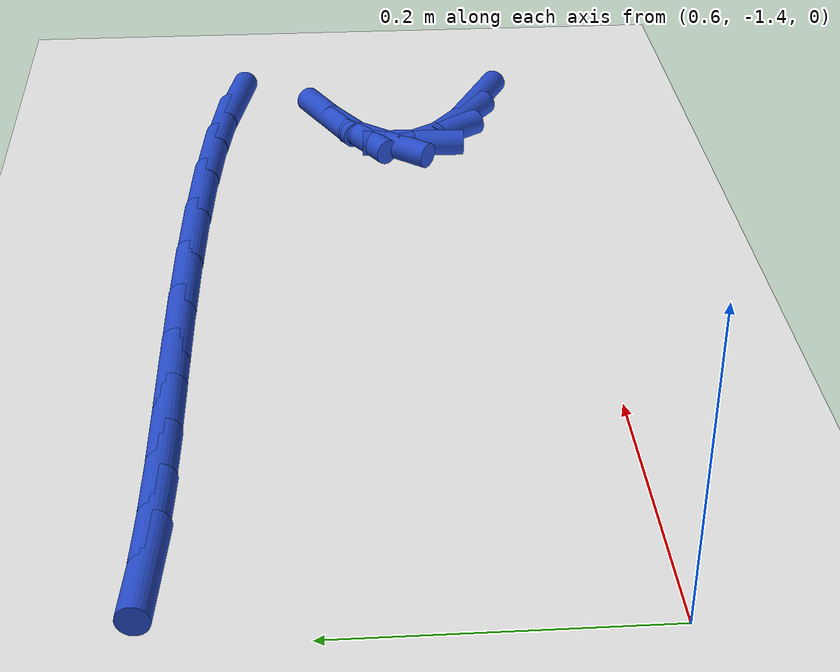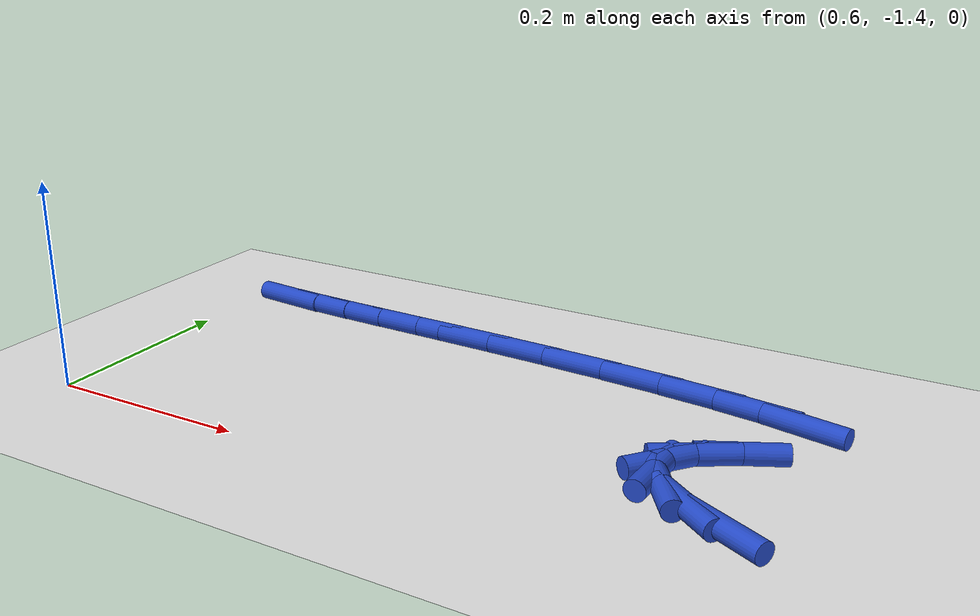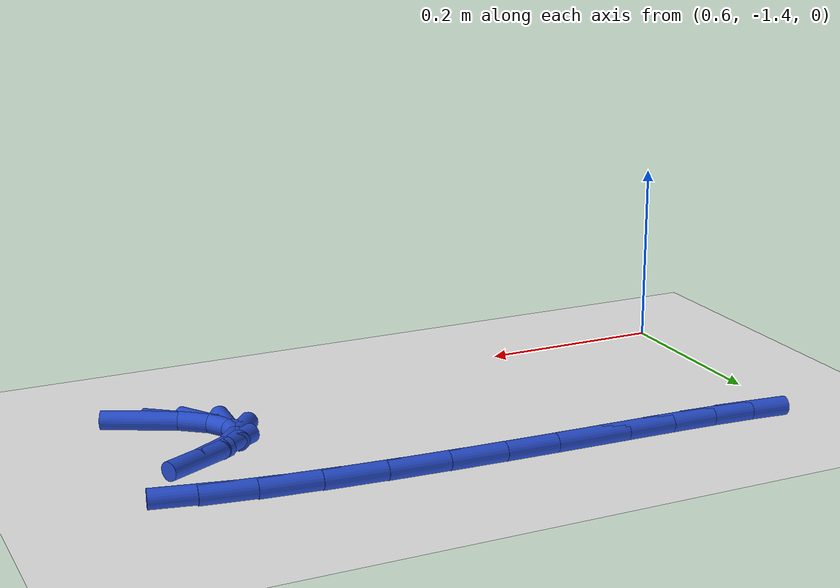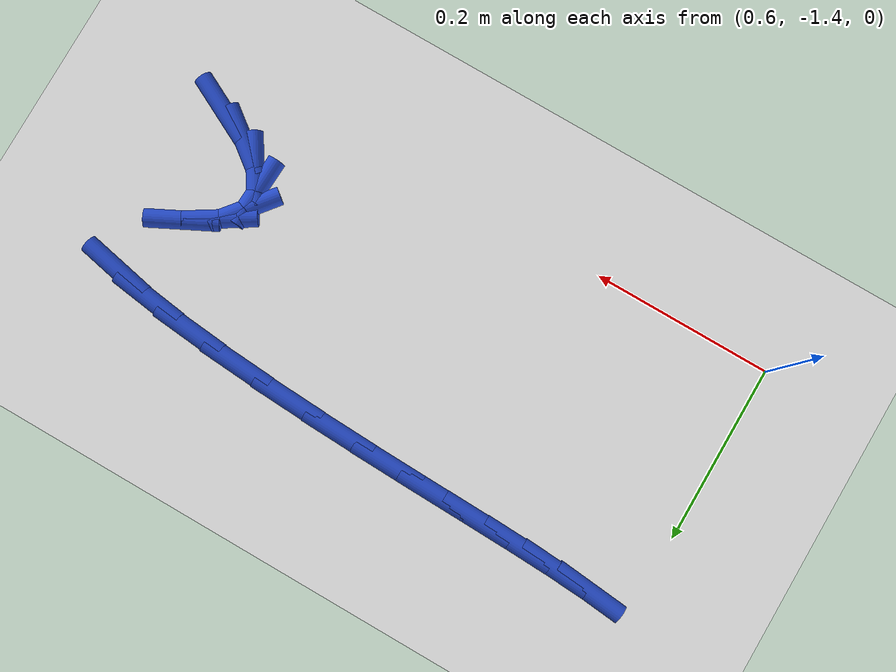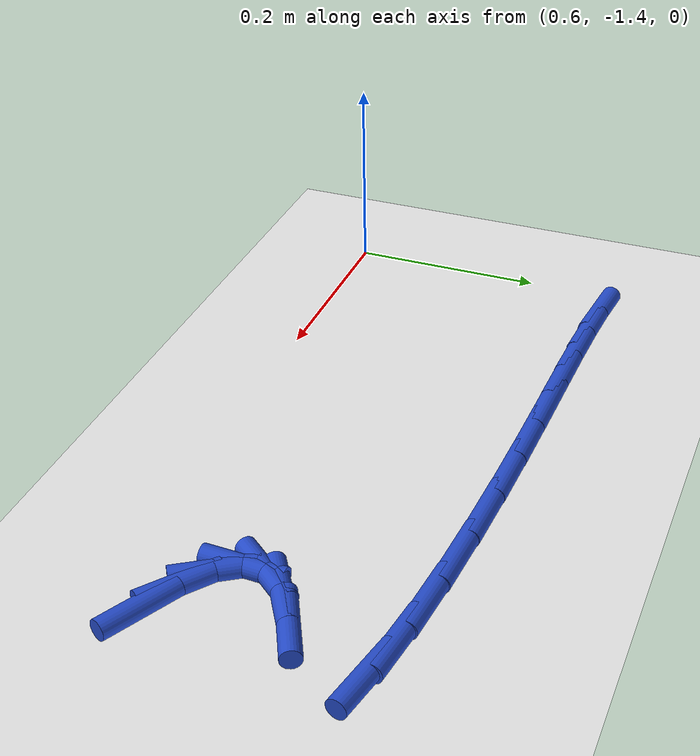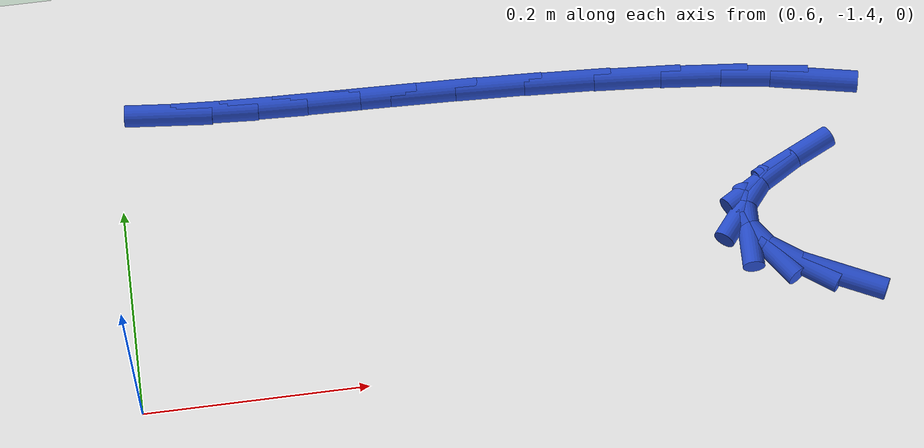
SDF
<sdf version="1.6">
 <world name="default">
  <model name="ground_plane">
   <static>1</static>
   <link name="link">
    <collision name="collision">
     <geometry><plane><normal>0 0 1</normal><size>100 100</size></plane></geometry>
     <surface><friction><ode><mu>100</mu><mu2>50</mu2></ode></friction></surface>
    </collision>
    <visual name="visual">
     <cast_shadows>0</cast_shadows>
     <geometry><plane><normal>0 0 1</normal><size>100 100</size></plane></geometry>
     <material>
      <script><uri>file://media/materials/scripts/gazebo.material</uri><name>Gazebo/WhiteGlow</name></script>
     </material>
    </visual>
   </link>
  </model>
  <model name="line">
   <link name="link_163">
    <pose>1.2312356852924302 -1.353635019443412 0.01 0 1.57 -0.47219222579565157</pose>
    <collision name="collision">
     <geometry><cylinder><radius>0.01</radius><length>0.08</length></cylinder></geometry>
    </collision>
    <visual name="visual">
     <material>
      <script><name>Gazebo/Blue</name><uri>file://media/materials/scripts/gazebo.material</uri></script>
     </material>
     <geometry><cylinder><radius>0.01</radius><length>0.08</length></cylinder></geometry>
    </visual>
   </link>
   <link name="link_164">
    <pose>1.194527801234 -1.3348873170623292 0.01 0 1.57 -0.6566058623356247</pose>
    <collision name="collision">
     <geometry><cylinder><radius>0.01</radius><length>0.08</length></cylinder></geometry>
    </collision>
    <visual name="visual">
     <material>
      <script><name>Gazebo/Blue</name><uri>file://media/materials/scripts/gazebo.material</uri></script>
     </material>
     <geometry><cylinder><radius>0.01</radius><length>0.08</length></cylinder></geometry>
    </visual>
   </link>
   <link name="link_165">
    <pose>1.1685684812323678 -1.3148809721735368 0.01 0 1.57 -0.999302382307509</pose>
    <collision name="collision">
     <geometry><cylinder><radius>0.01</radius><length>0.08</length></cylinder></geometry>
    </collision>
    <visual name="visual">
     <material>
      <script><name>Gazebo/Blue</name><uri>file://media/materials/scripts/gazebo.material</uri></script>
     </material>
     <geometry><cylinder><radius>0.01</radius><length>0.08</length></cylinder></geometry>
    </visual>
   </link>
   <link name="link_166">
    <pose>1.1551456030791352 -1.2940081199290376 0.01 0 1.57 1.5285938262172445</pose>
    <collision name="collision">
     <geometry><cylinder><radius>0.01</radius><length>0.08</length></cylinder></geometry>
    </collision>
    <visual name="visual">
     <material>
      <script><name>Gazebo/Blue</name><uri>file://media/materials/scripts/gazebo.material</uri></script>
     </material>
     <geometry><cylinder><radius>0.01</radius><length>0.08</length></cylinder></geometry>
    </visual>
   </link>
   <link name="link_167">
    <pose>1.1560470445659008 -1.2726608954808312 0.01 0 1.57 0.8997633841248495</pose>
    <collision name="collision">
     <geometry><cylinder><radius>0.01</radius><length>0.08</length></cylinder></geometry>
    </collision>
    <visual name="visual">
     <material>
      <script><name>Gazebo/Blue</name><uri>file://media/materials/scripts/gazebo.material</uri></script>
     </material>
     <geometry><cylinder><radius>0.01</radius><length>0.08</length></cylinder></geometry>
    </visual>
   </link>
   <link name="link_168">
    <pose>1.1730606834842643 -1.2512314339809192 0.01 0 1.57 0.5594759212123996</pose>
    <collision name="collision">
     <geometry><cylinder><radius>0.01</radius><length>0.08</length></cylinder></geometry>
    </collision>
    <visual name="visual">
     <material>
      <script><name>Gazebo/Blue</name><uri>file://media/materials/scripts/gazebo.material</uri></script>
     </material>
     <geometry><cylinder><radius>0.01</radius><length>0.08</length></cylinder></geometry>
    </visual>
   </link>
   <link name="link_169">
    <pose>1.2067399736773252 -1.2301407990273063 0.01 0 1.57 0.4667133469648531</pose>
    <collision name="collision">
     <geometry><cylinder><radius>0.01</radius><length>0.08</length></cylinder></geometry>
    </collision>
    <visual name="visual">
     <material>
      <script><name>Gazebo/Blue</name><uri>file://media/materials/scripts/gazebo.material</uri></script>
     </material>
     <geometry><cylinder><radius>0.01</radius><length>0.08</length></cylinder></geometry>
    </visual>
   </link>
   <link name="link_174">
    <pose>1.2393717977313117 -1.1513306906784497 0.01 0 1.57 -0.20512626651530477</pose>
    <collision name="collision">
     <geometry><cylinder><radius>0.01</radius><length>0.08</length></cylinder></geometry>
    </collision>
    <visual name="visual">
     <material>
      <script><name>Gazebo/Blue</name><uri>file://media/materials/scripts/gazebo.material</uri></script>
     </material>
     <geometry><cylinder><radius>0.01</radius><length>0.08</length></cylinder></geometry>
    </visual>
   </link>
   <link name="link_175">
    <pose>1.1947849720437476 -1.1420542880884248 0.01 0 1.57 -0.13594947459526047</pose>
    <collision name="collision">
     <geometry><cylinder><radius>0.01</radius><length>0.08</length></cylinder></geometry>
    </collision>
    <visual name="visual">
     <material>
      <script><name>Gazebo/Blue</name><uri>file://media/materials/scripts/gazebo.material</uri></script>
     </material>
     <geometry><cylinder><radius>0.01</radius><length>0.08</length></cylinder></geometry>
    </visual>
   </link>
   <link name="link_176">
    <pose>1.1400977162249313 -1.1345734398458625 0.01 0 1.57 -0.0957738552132185</pose>
    <collision name="collision">
     <geometry><cylinder><radius>0.01</radius><length>0.08</length></cylinder></geometry>
    </collision>
    <visual name="visual">
     <material>
      <script><name>Gazebo/Blue</name><uri>file://media/materials/scripts/gazebo.material</uri></script>
     </material>
     <geometry><cylinder><radius>0.01</radius><length>0.08</length></cylinder></geometry>
    </visual>
   </link>
   <link name="link_177">
    <pose>1.078939464912209 -1.1286981032458536 0.01 0 1.57 -0.06957316440489632</pose>
    <collision name="collision">
     <geometry><cylinder><radius>0.01</radius><length>0.08</length></cylinder></geometry>
    </collision>
    <visual name="visual">
     <material>
      <script><name>Gazebo/Blue</name><uri>file://media/materials/scripts/gazebo.material</uri></script>
     </material>
     <geometry><cylinder><radius>0.01</radius><length>0.08</length></cylinder></geometry>
    </visual>
   </link>
   <link name="link_178">
    <pose>1.0149396527429226 -1.1242382355834883 0.01 0 1.57 -0.05112360219582656</pose>
    <collision name="collision">
     <geometry><cylinder><radius>0.01</radius><length>0.08</length></cylinder></geometry>
    </collision>
    <visual name="visual">
     <material>
      <script><name>Gazebo/Blue</name><uri>file://media/materials/scripts/gazebo.material</uri></script>
     </material>
     <geometry><cylinder><radius>0.01</radius><length>0.08</length></cylinder></geometry>
    </visual>
   </link>
   <link name="link_179">
    <pose>0.9517275184010014 -1.1210037852046837 0.01 0 1.57 -0.037492604203357316</pose>
    <collision name="collision">
     <geometry><cylinder><radius>0.01</radius><length>0.08</length></cylinder></geometry>
    </collision>
    <visual name="visual">
     <material>
      <script><name>Gazebo/Blue</name><uri>file://media/materials/scripts/gazebo.material</uri></script>
     </material>
     <geometry><cylinder><radius>0.01</radius><length>0.08</length></cylinder></geometry>
    </visual>
   </link>
   <link name="link_180">
    <pose>0.8921559799146048 -1.1187692459651406 0.01 0 1.57 -0.028330644411150498</pose>
    <collision name="collision">
     <geometry><cylinder><radius>0.01</radius><length>0.08</length></cylinder></geometry>
    </collision>
    <visual name="visual">
     <material>
      <script><name>Gazebo/Blue</name><uri>file://media/materials/scripts/gazebo.material</uri></script>
     </material>
     <geometry><cylinder><radius>0.01</radius><length>0.08</length></cylinder></geometry>
    </visual>
   </link>
   <link name="link_181">
    <pose>0.8365390876099976 -1.11719316187506 0.01 0 1.57 -0.024726787719496317</pose>
    <collision name="collision">
     <geometry><cylinder><radius>0.01</radius><length>0.08</length></cylinder></geometry>
    </collision>
    <visual name="visual">
     <material>
      <script><name>Gazebo/Blue</name><uri>file://media/materials/scripts/gazebo.material</uri></script>
     </material>
     <geometry><cylinder><radius>0.01</radius><length>0.08</length></cylinder></geometry>
    </visual>
   </link>
   <link name="link_182">
    <pose>0.7846727049486572 -1.1159104114000118 0.01 0 1.57 -0.028025320395432818</pose>
    <collision name="collision">
     <geometry><cylinder><radius>0.01</radius><length>0.08</length></cylinder></geometry>
    </collision>
    <visual name="visual">
     <material>
      <script><name>Gazebo/Blue</name><uri>file://media/materials/scripts/gazebo.material</uri></script>
     </material>
     <geometry><cylinder><radius>0.01</radius><length>0.08</length></cylinder></geometry>
    </visual>
   </link>
   <link name="link_183">
    <pose>0.7363526953920643 -1.1145558730055656 0.01 0 1.57 -0.03980858350350098</pose>
    <collision name="collision">
     <geometry><cylinder><radius>0.01</radius><length>0.08</length></cylinder></geometry>
    </collision>
    <visual name="visual">
     <material>
      <script><name>Gazebo/Blue</name><uri>file://media/materials/scripts/gazebo.material</uri></script>
     </material>
     <geometry><cylinder><radius>0.01</radius><length>0.08</length></cylinder></geometry>
    </visual>
   </link>
   <link name="link_184">
    <pose>0.691374922401696 -1.112764425157291 0.01 0 1.57 -0.06190690956616389</pose>
    <collision name="collision">
     <geometry><cylinder><radius>0.01</radius><length>0.08</length></cylinder></geometry>
    </collision>
    <visual name="visual">
     <material>
      <script><name>Gazebo/Blue</name><uri>file://media/materials/scripts/gazebo.material</uri></script>
     </material>
     <geometry><cylinder><radius>0.01</radius><length>0.08</length></cylinder></geometry>
    </visual>
   </link>
   <link name="link_185">
    <pose>0.6495352494390302 -1.1101709463207576 0.01 0 1.57 -0.09636077951188271</pose>
    <collision name="collision">
     <geometry><cylinder><radius>0.01</radius><length>0.08</length></cylinder></geometry>
    </collision>
    <visual name="visual">
     <material>
      <script><name>Gazebo/Blue</name><uri>file://media/materials/scripts/gazebo.material</uri></script>
     </material>
     <geometry><cylinder><radius>0.01</radius><length>0.08</length></cylinder></geometry>
    </visual>
   </link>
  </model>
 </world>
</sdf>
